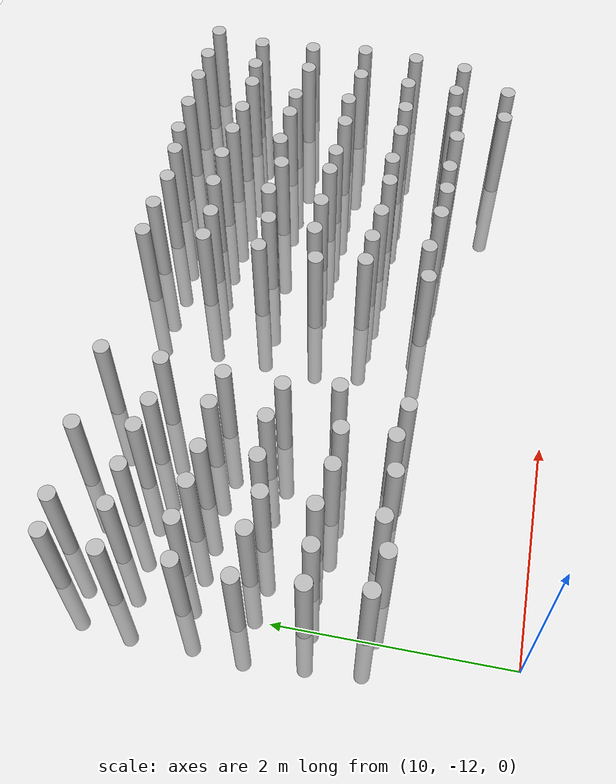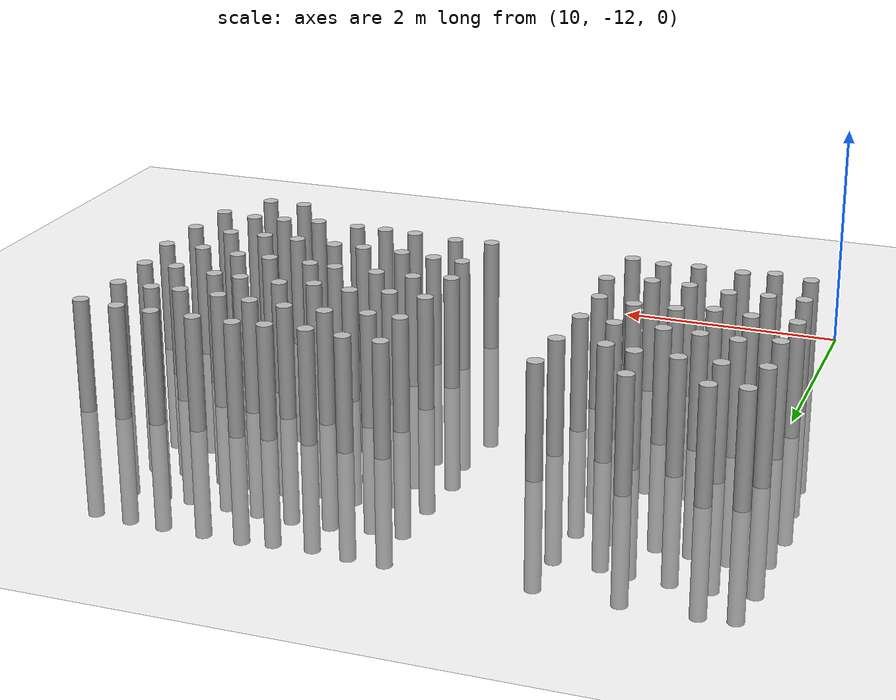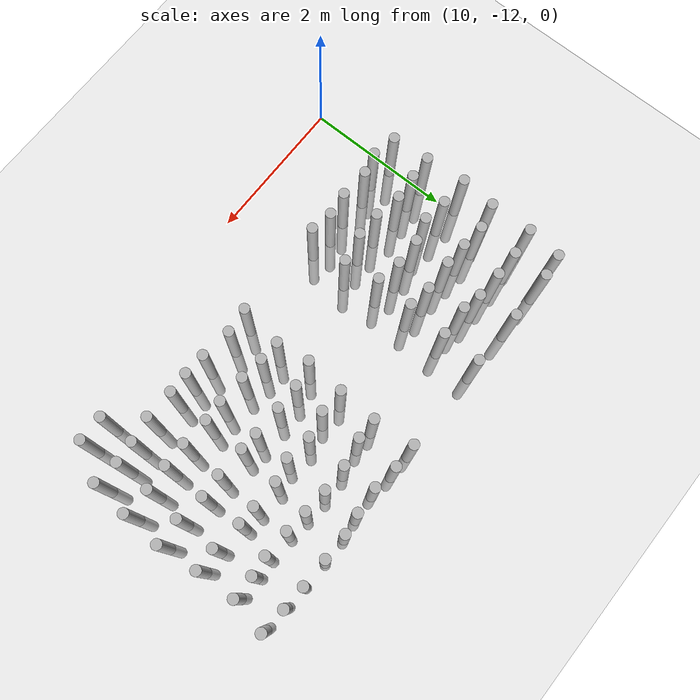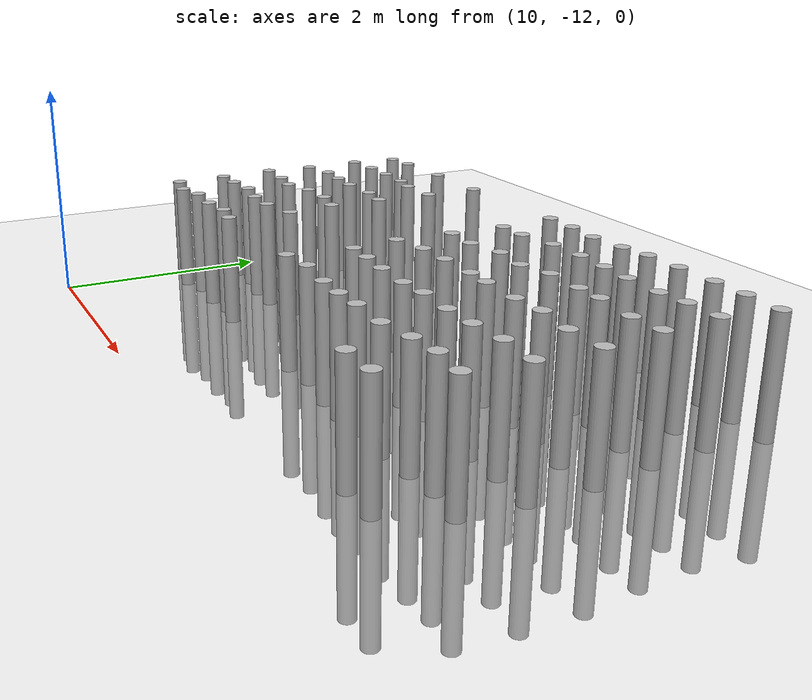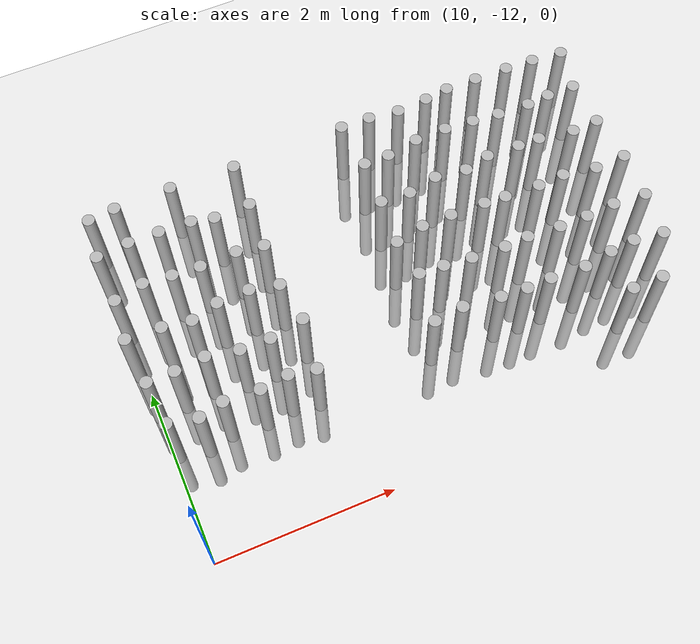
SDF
<sdf version="1.7">
 <world name="farmland_world">
  <model name="ground_plane">
   <static>1</static>
   <link name="link">
    <collision name="collision">
     <geometry><plane><normal>0 0 1</normal><size>40.0 40.0</size></plane></geometry>
     <surface><friction><ode><mu>100</mu><mu2>50</mu2></ode></friction></surface>
    </collision>
    <visual name="visual">
     <cast_shadows>0</cast_shadows>
     <geometry><plane><normal>0 0 1</normal><size>40.0 40.0</size></plane></geometry>
     <material>
      <script><uri>file://media/materials/scripts/gazebo.material</uri><name>Gazebo/Grey</name></script>
     </material>
    </visual>
   </link>
  </model>
  <model name="tree_3_462">
   <static>1</static>
   <link name="link">
    <collision name="collision">
     <geometry><cylinder><radius>0.07</radius><length>2.0</length></cylinder></geometry>
     <surface><friction><ode><mu>100</mu><mu2>50</mu2></ode></friction></surface>
    </collision>
    <visual name="visual">
     <geometry><cylinder><radius>0.07</radius><length>2.0</length></cylinder></geometry>
    </visual>
   </link>
   <pose>10.034355227748037 -8.24918176960398 0 0 0 0</pose>
  </model>
  <model name="tree_3_463">
   <static>1</static>
   <link name="link">
    <collision name="collision">
     <geometry><cylinder><radius>0.07</radius><length>2.0</length></cylinder></geometry>
     <surface><friction><ode><mu>100</mu><mu2>50</mu2></ode></friction></surface>
    </collision>
    <visual name="visual">
     <geometry><cylinder><radius>0.07</radius><length>2.0</length></cylinder></geometry>
    </visual>
   </link>
   <pose>9.980914755187554 -8.711843196977357 0 0 0 0</pose>
  </model>
  <model name="tree_3_464">
   <static>1</static>
   <link name="link">
    <collision name="collision">
     <geometry><cylinder><radius>0.07</radius><length>2.0</length></cylinder></geometry>
     <surface><friction><ode><mu>100</mu><mu2>50</mu2></ode></friction></surface>
    </collision>
    <visual name="visual">
     <geometry><cylinder><radius>0.07</radius><length>2.0</length></cylinder></geometry>
    </visual>
   </link>
   <pose>9.999004017407108 -9.276127585104843 0 0 0 0</pose>
  </model>
  <model name="tree_3_465">
   <static>1</static>
   <link name="link">
    <collision name="collision">
     <geometry><cylinder><radius>0.07</radius><length>2.0</length></cylinder></geometry>
     <surface><friction><ode><mu>100</mu><mu2>50</mu2></ode></friction></surface>
    </collision>
    <visual name="visual">
     <geometry><cylinder><radius>0.07</radius><length>2.0</length></cylinder></geometry>
    </visual>
   </link>
   <pose>9.958906006982131 -9.741038164783939 0 0 0 0</pose>
  </model>
  <model name="tree_3_466">
   <static>1</static>
   <link name="link">
    <collision name="collision">
     <geometry><cylinder><radius>0.07</radius><length>2.0</length></cylinder></geometry>
     <surface><friction><ode><mu>100</mu><mu2>50</mu2></ode></friction></surface>
    </collision>
    <visual name="visual">
     <geometry><cylinder><radius>0.07</radius><length>2.0</length></cylinder></geometry>
    </visual>
   </link>
   <pose>10.008558735923781 -10.279295797023625 0 0 0 0</pose>
  </model>
  <model name="tree_3_467">
   <static>1</static>
   <link name="link">
    <collision name="collision">
     <geometry><cylinder><radius>0.07</radius><length>2.0</length></cylinder></geometry>
     <surface><friction><ode><mu>100</mu><mu2>50</mu2></ode></friction></surface>
    </collision>
    <visual name="visual">
     <geometry><cylinder><radius>0.07</radius><length>2.0</length></cylinder></geometry>
    </visual>
   </link>
   <pose>10.049221879994418 -10.774444356876124 0 0 0 0</pose>
  </model>
  <model name="tree_3_492">
   <static>1</static>
   <link name="link">
    <collision name="collision">
     <geometry><cylinder><radius>0.07</radius><length>2.0</length></cylinder></geometry>
     <surface><friction><ode><mu>100</mu><mu2>50</mu2></ode></friction></surface>
    </collision>
    <visual name="visual">
     <geometry><cylinder><radius>0.07</radius><length>2.0</length></cylinder></geometry>
    </visual>
   </link>
   <pose>10.332365573795773 -8.217462217007322 0 0 0 0</pose>
  </model>
  <model name="tree_3_493">
   <static>1</static>
   <link name="link">
    <collision name="collision">
     <geometry><cylinder><radius>0.07</radius><length>2.0</length></cylinder></geometry>
     <surface><friction><ode><mu>100</mu><mu2>50</mu2></ode></friction></surface>
    </collision>
    <visual name="visual">
     <geometry><cylinder><radius>0.07</radius><length>2.0</length></cylinder></geometry>
    </visual>
   </link>
   <pose>10.339414073277004 -8.677814502808289 0 0 0 0</pose>
  </model>
  <model name="tree_3_494">
   <static>1</static>
   <link name="link">
    <collision name="collision">
     <geometry><cylinder><radius>0.07</radius><length>2.0</length></cylinder></geometry>
     <surface><friction><ode><mu>100</mu><mu2>50</mu2></ode></friction></surface>
    </collision>
    <visual name="visual">
     <geometry><cylinder><radius>0.07</radius><length>2.0</length></cylinder></geometry>
    </visual>
   </link>
   <pose>10.327191539445167 -9.200652118761365 0 0 0 0</pose>
  </model>
  <model name="tree_3_495">
   <static>1</static>
   <link name="link">
    <collision name="collision">
     <geometry><cylinder><radius>0.07</radius><length>2.0</length></cylinder></geometry>
     <surface><friction><ode><mu>100</mu><mu2>50</mu2></ode></friction></surface>
    </collision>
    <visual name="visual">
     <geometry><cylinder><radius>0.07</radius><length>2.0</length></cylinder></geometry>
    </visual>
   </link>
   <pose>10.345762252976375 -9.758223124699576 0 0 0 0</pose>
  </model>
  <model name="tree_3_496">
   <static>1</static>
   <link name="link">
    <collision name="collision">
     <geometry><cylinder><radius>0.07</radius><length>2.0</length></cylinder></geometry>
     <surface><friction><ode><mu>100</mu><mu2>50</mu2></ode></friction></surface>
    </collision>
    <visual name="visual">
     <geometry><cylinder><radius>0.07</radius><length>2.0</length></cylinder></geometry>
    </visual>
   </link>
   <pose>10.311773828897104 -10.27441916211989 0 0 0 0</pose>
  </model>
  <model name="tree_3_497">
   <static>1</static>
   <link name="link">
    <collision name="collision">
     <geometry><cylinder><radius>0.07</radius><length>2.0</length></cylinder></geometry>
     <surface><friction><ode><mu>100</mu><mu2>50</mu2></ode></friction></surface>
    </collision>
    <visual name="visual">
     <geometry><cylinder><radius>0.07</radius><length>2.0</length></cylinder></geometry>
    </visual>
   </link>
   <pose>10.374017797929314 -10.842817393499175 0 0 0 0</pose>
  </model>
  <model name="tree_3_523">
   <static>1</static>
   <link name="link">
    <collision name="collision">
     <geometry><cylinder><radius>0.07</radius><length>2.0</length></cylinder></geometry>
     <surface><friction><ode><mu>100</mu><mu2>50</mu2></ode></friction></surface>
    </collision>
    <visual name="visual">
     <geometry><cylinder><radius>0.07</radius><length>2.0</length></cylinder></geometry>
    </visual>
   </link>
   <pose>10.681841342805669 -8.679052861885017 0 0 0 0</pose>
  </model>
  <model name="tree_3_524">
   <static>1</static>
   <link name="link">
    <collision name="collision">
     <geometry><cylinder><radius>0.07</radius><length>2.0</length></cylinder></geometry>
     <surface><friction><ode><mu>100</mu><mu2>50</mu2></ode></friction></surface>
    </collision>
    <visual name="visual">
     <geometry><cylinder><radius>0.07</radius><length>2.0</length></cylinder></geometry>
    </visual>
   </link>
   <pose>10.643645539555626 -9.229473691809075 0 0 0 0</pose>
  </model>
  <model name="tree_3_525">
   <static>1</static>
   <link name="link">
    <collision name="collision">
     <geometry><cylinder><radius>0.07</radius><length>2.0</length></cylinder></geometry>
     <surface><friction><ode><mu>100</mu><mu2>50</mu2></ode></friction></surface>
    </collision>
    <visual name="visual">
     <geometry><cylinder><radius>0.07</radius><length>2.0</length></cylinder></geometry>
    </visual>
   </link>
   <pose>10.663947074443218 -9.80685404034091 0 0 0 0</pose>
  </model>
  <model name="tree_3_526">
   <static>1</static>
   <link name="link">
    <collision name="collision">
     <geometry><cylinder><radius>0.07</radius><length>2.0</length></cylinder></geometry>
     <surface><friction><ode><mu>100</mu><mu2>50</mu2></ode></friction></surface>
    </collision>
    <visual name="visual">
     <geometry><cylinder><radius>0.07</radius><length>2.0</length></cylinder></geometry>
    </visual>
   </link>
   <pose>10.645173323330264 -10.24244063990808 0 0 0 0</pose>
  </model>
  <model name="tree_3_527">
   <static>1</static>
   <link name="link">
    <collision name="collision">
     <geometry><cylinder><radius>0.07</radius><length>2.0</length></cylinder></geometry>
     <surface><friction><ode><mu>100</mu><mu2>50</mu2></ode></friction></surface>
    </collision>
    <visual name="visual">
     <geometry><cylinder><radius>0.07</radius><length>2.0</length></cylinder></geometry>
    </visual>
   </link>
   <pose>10.647410132929833 -10.77405141595701 0 0 0 0</pose>
  </model>
  <model name="tree_3_552">
   <static>1</static>
   <link name="link">
    <collision name="collision">
     <geometry><cylinder><radius>0.07</radius><length>2.0</length></cylinder></geometry>
     <surface><friction><ode><mu>100</mu><mu2>50</mu2></ode></friction></surface>
    </collision>
    <visual name="visual">
     <geometry><cylinder><radius>0.07</radius><length>2.0</length></cylinder></geometry>
    </visual>
   </link>
   <pose>10.97089051082248 -8.205882709805417 0 0 0 0</pose>
  </model>
  <model name="tree_3_553">
   <static>1</static>
   <link name="link">
    <collision name="collision">
     <geometry><cylinder><radius>0.07</radius><length>2.0</length></cylinder></geometry>
     <surface><friction><ode><mu>100</mu><mu2>50</mu2></ode></friction></surface>
    </collision>
    <visual name="visual">
     <geometry><cylinder><radius>0.07</radius><length>2.0</length></cylinder></geometry>
    </visual>
   </link>
   <pose>11.041349924558634 -8.69369574550247 0 0 0 0</pose>
  </model>
  <model name="tree_3_554">
   <static>1</static>
   <link name="link">
    <collision name="collision">
     <geometry><cylinder><radius>0.07</radius><length>2.0</length></cylinder></geometry>
     <surface><friction><ode><mu>100</mu><mu2>50</mu2></ode></friction></surface>
    </collision>
    <visual name="visual">
     <geometry><cylinder><radius>0.07</radius><length>2.0</length></cylinder></geometry>
    </visual>
   </link>
   <pose>10.952079924428277 -9.247126707628068 0 0 0 0</pose>
  </model>
  <model name="tree_3_555">
   <static>1</static>
   <link name="link">
    <collision name="collision">
     <geometry><cylinder><radius>0.07</radius><length>2.0</length></cylinder></geometry>
     <surface><friction><ode><mu>100</mu><mu2>50</mu2></ode></friction></surface>
    </collision>
    <visual name="visual">
     <geometry><cylinder><radius>0.07</radius><length>2.0</length></cylinder></geometry>
    </visual>
   </link>
   <pose>10.968363971186127 -9.719468244523386 0 0 0 0</pose>
  </model>
  <model name="tree_3_556">
   <static>1</static>
   <link name="link">
    <collision name="collision">
     <geometry><cylinder><radius>0.07</radius><length>2.0</length></cylinder></geometry>
     <surface><friction><ode><mu>100</mu><mu2>50</mu2></ode></friction></surface>
    </collision>
    <visual name="visual">
     <geometry><cylinder><radius>0.07</radius><length>2.0</length></cylinder></geometry>
    </visual>
   </link>
   <pose>11.002034442983186 -10.310672538116515 0 0 0 0</pose>
  </model>
  <model name="tree_3_557">
   <static>1</static>
   <link name="link">
    <collision name="collision">
     <geometry><cylinder><radius>0.07</radius><length>2.0</length></cylinder></geometry>
     <surface><friction><ode><mu>100</mu><mu2>50</mu2></ode></friction></surface>
    </collision>
    <visual name="visual">
     <geometry><cylinder><radius>0.07</radius><length>2.0</length></cylinder></geometry>
    </visual>
   </link>
   <pose>11.040729754713265 -10.798969011950629 0 0 0 0</pose>
  </model>
  <model name="tree_3_583">
   <static>1</static>
   <link name="link">
    <collision name="collision">
     <geometry><cylinder><radius>0.07</radius><length>2.0</length></cylinder></geometry>
     <surface><friction><ode><mu>100</mu><mu2>50</mu2></ode></friction></surface>
    </collision>
    <visual name="visual">
     <geometry><cylinder><radius>0.07</radius><length>2.0</length></cylinder></geometry>
    </visual>
   </link>
   <pose>11.290045029179474 -8.749423629028929 0 0 0 0</pose>
  </model>
  <model name="tree_3_584">
   <static>1</static>
   <link name="link">
    <collision name="collision">
     <geometry><cylinder><radius>0.07</radius><length>2.0</length></cylinder></geometry>
     <surface><friction><ode><mu>100</mu><mu2>50</mu2></ode></friction></surface>
    </collision>
    <visual name="visual">
     <geometry><cylinder><radius>0.07</radius><length>2.0</length></cylinder></geometry>
    </visual>
   </link>
   <pose>11.358968949280722 -9.230997505002115 0 0 0 0</pose>
  </model>
  <model name="tree_3_585">
   <static>1</static>
   <link name="link">
    <collision name="collision">
     <geometry><cylinder><radius>0.07</radius><length>2.0</length></cylinder></geometry>
     <surface><friction><ode><mu>100</mu><mu2>50</mu2></ode></friction></surface>
    </collision>
    <visual name="visual">
     <geometry><cylinder><radius>0.07</radius><length>2.0</length></cylinder></geometry>
    </visual>
   </link>
   <pose>11.325517105624607 -9.70866576479619 0 0 0 0</pose>
  </model>
  <model name="tree_3_586">
   <static>1</static>
   <link name="link">
    <collision name="collision">
     <geometry><cylinder><radius>0.07</radius><length>2.0</length></cylinder></geometry>
     <surface><friction><ode><mu>100</mu><mu2>50</mu2></ode></friction></surface>
    </collision>
    <visual name="visual">
     <geometry><cylinder><radius>0.07</radius><length>2.0</length></cylinder></geometry>
    </visual>
   </link>
   <pose>11.33307773273002 -10.315350873492628 0 0 0 0</pose>
  </model>
  <model name="tree_3_587">
   <static>1</static>
   <link name="link">
    <collision name="collision">
     <geometry><cylinder><radius>0.07</radius><length>2.0</length></cylinder></geometry>
     <surface><friction><ode><mu>100</mu><mu2>50</mu2></ode></friction></surface>
    </collision>
    <visual name="visual">
     <geometry><cylinder><radius>0.07</radius><length>2.0</length></cylinder></geometry>
    </visual>
   </link>
   <pose>11.350974979517726 -10.760640184333463 0 0 0 0</pose>
  </model>
  <model name="tree_3_612">
   <static>1</static>
   <link name="link">
    <collision name="collision">
     <geometry><cylinder><radius>0.07</radius><length>2.0</length></cylinder></geometry>
     <surface><friction><ode><mu>100</mu><mu2>50</mu2></ode></friction></surface>
    </collision>
    <visual name="visual">
     <geometry><cylinder><radius>0.07</radius><length>2.0</length></cylinder></geometry>
    </visual>
   </link>
   <pose>11.702949707279314 -8.221105415766132 0 0 0 0</pose>
  </model>
  <model name="tree_3_613">
   <static>1</static>
   <link name="link">
    <collision name="collision">
     <geometry><cylinder><radius>0.07</radius><length>2.0</length></cylinder></geometry>
     <surface><friction><ode><mu>100</mu><mu2>50</mu2></ode></friction></surface>
    </collision>
    <visual name="visual">
     <geometry><cylinder><radius>0.07</radius><length>2.0</length></cylinder></geometry>
    </visual>
   </link>
   <pose>11.69376539286346 -8.737651073276362 0 0 0 0</pose>
  </model>
  <model name="tree_3_614">
   <static>1</static>
   <link name="link">
    <collision name="collision">
     <geometry><cylinder><radius>0.07</radius><length>2.0</length></cylinder></geometry>
     <surface><friction><ode><mu>100</mu><mu2>50</mu2></ode></friction></surface>
    </collision>
    <visual name="visual">
     <geometry><cylinder><radius>0.07</radius><length>2.0</length></cylinder></geometry>
    </visual>
   </link>
   <pose>11.659645146515228 -9.275445036909211 0 0 0 0</pose>
  </model>
  <model name="tree_3_615">
   <static>1</static>
   <link name="link">
    <collision name="collision">
     <geometry><cylinder><radius>0.07</radius><length>2.0</length></cylinder></geometry>
     <surface><friction><ode><mu>100</mu><mu2>50</mu2></ode></friction></surface>
    </collision>
    <visual name="visual">
     <geometry><cylinder><radius>0.07</radius><length>2.0</length></cylinder></geometry>
    </visual>
   </link>
   <pose>11.644641552794607 -9.777406642478953 0 0 0 0</pose>
  </model>
  <model name="tree_3_616">
   <static>1</static>
   <link name="link">
    <collision name="collision">
     <geometry><cylinder><radius>0.07</radius><length>2.0</length></cylinder></geometry>
     <surface><friction><ode><mu>100</mu><mu2>50</mu2></ode></friction></surface>
    </collision>
    <visual name="visual">
     <geometry><cylinder><radius>0.07</radius><length>2.0</length></cylinder></geometry>
    </visual>
   </link>
   <pose>11.717865262290651 -10.240258479360453 0 0 0 0</pose>
  </model>
  <model name="tree_3_617">
   <static>1</static>
   <link name="link">
    <collision name="collision">
     <geometry><cylinder><radius>0.07</radius><length>2.0</length></cylinder></geometry>
     <surface><friction><ode><mu>100</mu><mu2>50</mu2></ode></friction></surface>
    </collision>
    <visual name="visual">
     <geometry><cylinder><radius>0.07</radius><length>2.0</length></cylinder></geometry>
    </visual>
   </link>
   <pose>11.643942772428986 -10.815607322003656 0 0 0 0</pose>
  </model>
  <model name="tree_3_642">
   <static>1</static>
   <link name="link">
    <collision name="collision">
     <geometry><cylinder><radius>0.07</radius><length>2.0</length></cylinder></geometry>
     <surface><friction><ode><mu>100</mu><mu2>50</mu2></ode></friction></surface>
    </collision>
    <visual name="visual">
     <geometry><cylinder><radius>0.07</radius><length>2.0</length></cylinder></geometry>
    </visual>
   </link>
   <pose>12.9904623324295 -8.209573094518973 0 0 0 0</pose>
  </model>
  <model name="tree_3_643">
   <static>1</static>
   <link name="link">
    <collision name="collision">
     <geometry><cylinder><radius>0.07</radius><length>2.0</length></cylinder></geometry>
     <surface><friction><ode><mu>100</mu><mu2>50</mu2></ode></friction></surface>
    </collision>
    <visual name="visual">
     <geometry><cylinder><radius>0.07</radius><length>2.0</length></cylinder></geometry>
    </visual>
   </link>
   <pose>13.04057066407297 -8.756005302309418 0 0 0 0</pose>
  </model>
  <model name="tree_3_644">
   <static>1</static>
   <link name="link">
    <collision name="collision">
     <geometry><cylinder><radius>0.07</radius><length>2.0</length></cylinder></geometry>
     <surface><friction><ode><mu>100</mu><mu2>50</mu2></ode></friction></surface>
    </collision>
    <visual name="visual">
     <geometry><cylinder><radius>0.07</radius><length>2.0</length></cylinder></geometry>
    </visual>
   </link>
   <pose>13.01732659056247 -9.27075604964552 0 0 0 0</pose>
  </model>
  <model name="tree_3_645">
   <static>1</static>
   <link name="link">
    <collision name="collision">
     <geometry><cylinder><radius>0.07</radius><length>2.0</length></cylinder></geometry>
     <surface><friction><ode><mu>100</mu><mu2>50</mu2></ode></friction></surface>
    </collision>
    <visual name="visual">
     <geometry><cylinder><radius>0.07</radius><length>2.0</length></cylinder></geometry>
    </visual>
   </link>
   <pose>12.975520608169763 -9.793567005552353 0 0 0 0</pose>
  </model>
  <model name="tree_3_646">
   <static>1</static>
   <link name="link">
    <collision name="collision">
     <geometry><cylinder><radius>0.07</radius><length>2.0</length></cylinder></geometry>
     <surface><friction><ode><mu>100</mu><mu2>50</mu2></ode></friction></surface>
    </collision>
    <visual name="visual">
     <geometry><cylinder><radius>0.07</radius><length>2.0</length></cylinder></geometry>
    </visual>
   </link>
   <pose>13.038709994615017 -10.231360615431187 0 0 0 0</pose>
  </model>
  <model name="tree_3_647">
   <static>1</static>
   <link name="link">
    <collision name="collision">
     <geometry><cylinder><radius>0.07</radius><length>2.0</length></cylinder></geometry>
     <surface><friction><ode><mu>100</mu><mu2>50</mu2></ode></friction></surface>
    </collision>
    <visual name="visual">
     <geometry><cylinder><radius>0.07</radius><length>2.0</length></cylinder></geometry>
    </visual>
   </link>
   <pose>12.96204335606268 -10.800317358770204 0 0 0 0</pose>
  </model>
  <model name="tree_3_672">
   <static>1</static>
   <link name="link">
    <collision name="collision">
     <geometry><cylinder><radius>0.07</radius><length>2.0</length></cylinder></geometry>
     <surface><friction><ode><mu>100</mu><mu2>50</mu2></ode></friction></surface>
    </collision>
    <visual name="visual">
     <geometry><cylinder><radius>0.07</radius><length>2.0</length></cylinder></geometry>
    </visual>
   </link>
   <pose>13.321592068045645 -8.215767385626709 0 0 0 0</pose>
  </model>
  <model name="tree_3_673">
   <static>1</static>
   <link name="link">
    <collision name="collision">
     <geometry><cylinder><radius>0.07</radius><length>2.0</length></cylinder></geometry>
     <surface><friction><ode><mu>100</mu><mu2>50</mu2></ode></friction></surface>
    </collision>
    <visual name="visual">
     <geometry><cylinder><radius>0.07</radius><length>2.0</length></cylinder></geometry>
    </visual>
   </link>
   <pose>13.324267784529892 -8.75476872961021 0 0 0 0</pose>
  </model>
  <model name="tree_3_674">
   <static>1</static>
   <link name="link">
    <collision name="collision">
     <geometry><cylinder><radius>0.07</radius><length>2.0</length></cylinder></geometry>
     <surface><friction><ode><mu>100</mu><mu2>50</mu2></ode></friction></surface>
    </collision>
    <visual name="visual">
     <geometry><cylinder><radius>0.07</radius><length>2.0</length></cylinder></geometry>
    </visual>
   </link>
   <pose>13.347888110116514 -9.288575292326017 0 0 0 0</pose>
  </model>
  <model name="tree_3_675">
   <static>1</static>
   <link name="link">
    <collision name="collision">
     <geometry><cylinder><radius>0.07</radius><length>2.0</length></cylinder></geometry>
     <surface><friction><ode><mu>100</mu><mu2>50</mu2></ode></friction></surface>
    </collision>
    <visual name="visual">
     <geometry><cylinder><radius>0.07</radius><length>2.0</length></cylinder></geometry>
    </visual>
   </link>
   <pose>13.304924322209027 -9.7225327858566 0 0 0 0</pose>
  </model>
  <model name="tree_3_676">
   <static>1</static>
   <link name="link">
    <collision name="collision">
     <geometry><cylinder><radius>0.07</radius><length>2.0</length></cylinder></geometry>
     <surface><friction><ode><mu>100</mu><mu2>50</mu2></ode></friction></surface>
    </collision>
    <visual name="visual">
     <geometry><cylinder><radius>0.07</radius><length>2.0</length></cylinder></geometry>
    </visual>
   </link>
   <pose>13.313763984476628 -10.247605630796855 0 0 0 0</pose>
  </model>
  <model name="tree_3_677">
   <static>1</static>
   <link name="link">
    <collision name="collision">
     <geometry><cylinder><radius>0.07</radius><length>2.0</length></cylinder></geometry>
     <surface><friction><ode><mu>100</mu><mu2>50</mu2></ode></friction></surface>
    </collision>
    <visual name="visual">
     <geometry><cylinder><radius>0.07</radius><length>2.0</length></cylinder></geometry>
    </visual>
   </link>
   <pose>13.29695463042059 -10.765091320781709 0 0 0 0</pose>
  </model>
  <model name="tree_3_702">
   <static>1</static>
   <link name="link">
    <collision name="collision">
     <geometry><cylinder><radius>0.07</radius><length>2.0</length></cylinder></geometry>
     <surface><friction><ode><mu>100</mu><mu2>50</mu2></ode></friction></surface>
    </collision>
    <visual name="visual">
     <geometry><cylinder><radius>0.07</radius><length>2.0</length></cylinder></geometry>
    </visual>
   </link>
   <pose>13.661231190270659 -8.256197031723621 0 0 0 0</pose>
  </model>
  <model name="tree_3_703">
   <static>1</static>
   <link name="link">
    <collision name="collision">
     <geometry><cylinder><radius>0.07</radius><length>2.0</length></cylinder></geometry>
     <surface><friction><ode><mu>100</mu><mu2>50</mu2></ode></friction></surface>
    </collision>
    <visual name="visual">
     <geometry><cylinder><radius>0.07</radius><length>2.0</length></cylinder></geometry>
    </visual>
   </link>
   <pose>13.685464908192015 -8.690448746650912 0 0 0 0</pose>
  </model>
  <model name="tree_3_704">
   <static>1</static>
   <link name="link">
    <collision name="collision">
     <geometry><cylinder><radius>0.07</radius><length>2.0</length></cylinder></geometry>
     <surface><friction><ode><mu>100</mu><mu2>50</mu2></ode></friction></surface>
    </collision>
    <visual name="visual">
     <geometry><cylinder><radius>0.07</radius><length>2.0</length></cylinder></geometry>
    </visual>
   </link>
   <pose>13.683949645974137 -9.216388109225543 0 0 0 0</pose>
  </model>
  <model name="tree_3_705">
   <static>1</static>
   <link name="link">
    <collision name="collision">
     <geometry><cylinder><radius>0.07</radius><length>2.0</length></cylinder></geometry>
     <surface><friction><ode><mu>100</mu><mu2>50</mu2></ode></friction></surface>
    </collision>
    <visual name="visual">
     <geometry><cylinder><radius>0.07</radius><length>2.0</length></cylinder></geometry>
    </visual>
   </link>
   <pose>13.643312410853571 -9.717119394999067 0 0 0 0</pose>
  </model>
  <model name="tree_3_706">
   <static>1</static>
   <link name="link">
    <collision name="collision">
     <geometry><cylinder><radius>0.07</radius><length>2.0</length></cylinder></geometry>
     <surface><friction><ode><mu>100</mu><mu2>50</mu2></ode></friction></surface>
    </collision>
    <visual name="visual">
     <geometry><cylinder><radius>0.07</radius><length>2.0</length></cylinder></geometry>
    </visual>
   </link>
   <pose>13.627222657958933 -10.27918110179269 0 0 0 0</pose>
  </model>
  <model name="tree_3_707">
   <static>1</static>
   <link name="link">
    <collision name="collision">
     <geometry><cylinder><radius>0.07</radius><length>2.0</length></cylinder></geometry>
     <surface><friction><ode><mu>100</mu><mu2>50</mu2></ode></friction></surface>
    </collision>
    <visual name="visual">
     <geometry><cylinder><radius>0.07</radius><length>2.0</length></cylinder></geometry>
    </visual>
   </link>
   <pose>13.71165046486986 -10.8160437298866 0 0 0 0</pose>
  </model>
  <model name="tree_3_732">
   <static>1</static>
   <link name="link">
    <collision name="collision">
     <geometry><cylinder><radius>0.07</radius><length>2.0</length></cylinder></geometry>
     <surface><friction><ode><mu>100</mu><mu2>50</mu2></ode></friction></surface>
    </collision>
    <visual name="visual">
     <geometry><cylinder><radius>0.07</radius><length>2.0</length></cylinder></geometry>
    </visual>
   </link>
   <pose>14.013452239657871 -8.232296355846897 0 0 0 0</pose>
  </model>
  <model name="tree_3_733">
   <static>1</static>
   <link name="link">
    <collision name="collision">
     <geometry><cylinder><radius>0.07</radius><length>2.0</length></cylinder></geometry>
     <surface><friction><ode><mu>100</mu><mu2>50</mu2></ode></friction></surface>
    </collision>
    <visual name="visual">
     <geometry><cylinder><radius>0.07</radius><length>2.0</length></cylinder></geometry>
    </visual>
   </link>
   <pose>14.045913522676882 -8.684928720273328 0 0 0 0</pose>
  </model>
  <model name="tree_3_734">
   <static>1</static>
   <link name="link">
    <collision name="collision">
     <geometry><cylinder><radius>0.07</radius><length>2.0</length></cylinder></geometry>
     <surface><friction><ode><mu>100</mu><mu2>50</mu2></ode></friction></surface>
    </collision>
    <visual name="visual">
     <geometry><cylinder><radius>0.07</radius><length>2.0</length></cylinder></geometry>
    </visual>
   </link>
   <pose>14.034196990984958 -9.263644720212852 0 0 0 0</pose>
  </model>
  <model name="tree_3_735">
   <static>1</static>
   <link name="link">
    <collision name="collision">
     <geometry><cylinder><radius>0.07</radius><length>2.0</length></cylinder></geometry>
     <surface><friction><ode><mu>100</mu><mu2>50</mu2></ode></friction></surface>
    </collision>
    <visual name="visual">
     <geometry><cylinder><radius>0.07</radius><length>2.0</length></cylinder></geometry>
    </visual>
   </link>
   <pose>14.037819652760547 -9.72550541514475 0 0 0 0</pose>
  </model>
  <model name="tree_3_736">
   <static>1</static>
   <link name="link">
    <collision name="collision">
     <geometry><cylinder><radius>0.07</radius><length>2.0</length></cylinder></geometry>
     <surface><friction><ode><mu>100</mu><mu2>50</mu2></ode></friction></surface>
    </collision>
    <visual name="visual">
     <geometry><cylinder><radius>0.07</radius><length>2.0</length></cylinder></geometry>
    </visual>
   </link>
   <pose>14.007352031995246 -10.297913568546171 0 0 0 0</pose>
  </model>
  <model name="tree_3_737">
   <static>1</static>
   <link name="link">
    <collision name="collision">
     <geometry><cylinder><radius>0.07</radius><length>2.0</length></cylinder></geometry>
     <surface><friction><ode><mu>100</mu><mu2>50</mu2></ode></friction></surface>
    </collision>
    <visual name="visual">
     <geometry><cylinder><radius>0.07</radius><length>2.0</length></cylinder></geometry>
    </visual>
   </link>
   <pose>14.0074934228252 -10.83184885056388 0 0 0 0</pose>
  </model>
  <model name="tree_3_762">
   <static>1</static>
   <link name="link">
    <collision name="collision">
     <geometry><cylinder><radius>0.07</radius><length>2.0</length></cylinder></geometry>
     <surface><friction><ode><mu>100</mu><mu2>50</mu2></ode></friction></surface>
    </collision>
    <visual name="visual">
     <geometry><cylinder><radius>0.07</radius><length>2.0</length></cylinder></geometry>
    </visual>
   </link>
   <pose>14.287584242155328 -8.195631277676357 0 0 0 0</pose>
  </model>
  <model name="tree_3_763">
   <static>1</static>
   <link name="link">
    <collision name="collision">
     <geometry><cylinder><radius>0.07</radius><length>2.0</length></cylinder></geometry>
     <surface><friction><ode><mu>100</mu><mu2>50</mu2></ode></friction></surface>
    </collision>
    <visual name="visual">
     <geometry><cylinder><radius>0.07</radius><length>2.0</length></cylinder></geometry>
    </visual>
   </link>
   <pose>14.374826270571619 -8.709224633259891 0 0 0 0</pose>
  </model>
  <model name="tree_3_764">
   <static>1</static>
   <link name="link">
    <collision name="collision">
     <geometry><cylinder><radius>0.07</radius><length>2.0</length></cylinder></geometry>
     <surface><friction><ode><mu>100</mu><mu2>50</mu2></ode></friction></surface>
    </collision>
    <visual name="visual">
     <geometry><cylinder><radius>0.07</radius><length>2.0</length></cylinder></geometry>
    </visual>
   </link>
   <pose>14.327893394053728 -9.191812683437444 0 0 0 0</pose>
  </model>
  <model name="tree_3_765">
   <static>1</static>
   <link name="link">
    <collision name="collision">
     <geometry><cylinder><radius>0.07</radius><length>2.0</length></cylinder></geometry>
     <surface><friction><ode><mu>100</mu><mu2>50</mu2></ode></friction></surface>
    </collision>
    <visual name="visual">
     <geometry><cylinder><radius>0.07</radius><length>2.0</length></cylinder></geometry>
    </visual>
   </link>
   <pose>14.28113385481321 -9.74004596868206 0 0 0 0</pose>
  </model>
  <model name="tree_3_766">
   <static>1</static>
   <link name="link">
    <collision name="collision">
     <geometry><cylinder><radius>0.07</radius><length>2.0</length></cylinder></geometry>
     <surface><friction><ode><mu>100</mu><mu2>50</mu2></ode></friction></surface>
    </collision>
    <visual name="visual">
     <geometry><cylinder><radius>0.07</radius><length>2.0</length></cylinder></geometry>
    </visual>
   </link>
   <pose>14.284073518128581 -10.28115246699807 0 0 0 0</pose>
  </model>
  <model name="tree_3_767">
   <static>1</static>
   <link name="link">
    <collision name="collision">
     <geometry><cylinder><radius>0.07</radius><length>2.0</length></cylinder></geometry>
     <surface><friction><ode><mu>100</mu><mu2>50</mu2></ode></friction></surface>
    </collision>
    <visual name="visual">
     <geometry><cylinder><radius>0.07</radius><length>2.0</length></cylinder></geometry>
    </visual>
   </link>
   <pose>14.28634650748223 -10.824327198599283 0 0 0 0</pose>
  </model>
  <model name="tree_3_792">
   <static>1</static>
   <link name="link">
    <collision name="collision">
     <geometry><cylinder><radius>0.07</radius><length>2.0</length></cylinder></geometry>
     <surface><friction><ode><mu>100</mu><mu2>50</mu2></ode></friction></surface>
    </collision>
    <visual name="visual">
     <geometry><cylinder><radius>0.07</radius><length>2.0</length></cylinder></geometry>
    </visual>
   </link>
   <pose>14.647328445629451 -8.19901577806704 0 0 0 0</pose>
  </model>
  <model name="tree_3_793">
   <static>1</static>
   <link name="link">
    <collision name="collision">
     <geometry><cylinder><radius>0.07</radius><length>2.0</length></cylinder></geometry>
     <surface><friction><ode><mu>100</mu><mu2>50</mu2></ode></friction></surface>
    </collision>
    <visual name="visual">
     <geometry><cylinder><radius>0.07</radius><length>2.0</length></cylinder></geometry>
    </visual>
   </link>
   <pose>14.680016031853423 -8.737472564234743 0 0 0 0</pose>
  </model>
  <model name="tree_3_794">
   <static>1</static>
   <link name="link">
    <collision name="collision">
     <geometry><cylinder><radius>0.07</radius><length>2.0</length></cylinder></geometry>
     <surface><friction><ode><mu>100</mu><mu2>50</mu2></ode></friction></surface>
    </collision>
    <visual name="visual">
     <geometry><cylinder><radius>0.07</radius><length>2.0</length></cylinder></geometry>
    </visual>
   </link>
   <pose>14.70146898034059 -9.206689157582915 0 0 0 0</pose>
  </model>
  <model name="tree_3_795">
   <static>1</static>
   <link name="link">
    <collision name="collision">
     <geometry><cylinder><radius>0.07</radius><length>2.0</length></cylinder></geometry>
     <surface><friction><ode><mu>100</mu><mu2>50</mu2></ode></friction></surface>
    </collision>
    <visual name="visual">
     <geometry><cylinder><radius>0.07</radius><length>2.0</length></cylinder></geometry>
    </visual>
   </link>
   <pose>14.679377434592356 -9.75649693137179 0 0 0 0</pose>
  </model>
  <model name="tree_3_796">
   <static>1</static>
   <link name="link">
    <collision name="collision">
     <geometry><cylinder><radius>0.07</radius><length>2.0</length></cylinder></geometry>
     <surface><friction><ode><mu>100</mu><mu2>50</mu2></ode></friction></surface>
    </collision>
    <visual name="visual">
     <geometry><cylinder><radius>0.07</radius><length>2.0</length></cylinder></geometry>
    </visual>
   </link>
   <pose>14.657421893480699 -10.306847739214367 0 0 0 0</pose>
  </model>
  <model name="tree_3_797">
   <static>1</static>
   <link name="link">
    <collision name="collision">
     <geometry><cylinder><radius>0.07</radius><length>2.0</length></cylinder></geometry>
     <surface><friction><ode><mu>100</mu><mu2>50</mu2></ode></friction></surface>
    </collision>
    <visual name="visual">
     <geometry><cylinder><radius>0.07</radius><length>2.0</length></cylinder></geometry>
    </visual>
   </link>
   <pose>14.684638663920623 -10.843099432207584 0 0 0 0</pose>
  </model>
  <model name="tree_3_822">
   <static>1</static>
   <link name="link">
    <collision name="collision">
     <geometry><cylinder><radius>0.07</radius><length>2.0</length></cylinder></geometry>
     <surface><friction><ode><mu>100</mu><mu2>50</mu2></ode></friction></surface>
    </collision>
    <visual name="visual">
     <geometry><cylinder><radius>0.07</radius><length>2.0</length></cylinder></geometry>
    </visual>
   </link>
   <pose>15.032745926055126 -8.20420875808978 0 0 0 0</pose>
  </model>
  <model name="tree_3_823">
   <static>1</static>
   <link name="link">
    <collision name="collision">
     <geometry><cylinder><radius>0.07</radius><length>2.0</length></cylinder></geometry>
     <surface><friction><ode><mu>100</mu><mu2>50</mu2></ode></friction></surface>
    </collision>
    <visual name="visual">
     <geometry><cylinder><radius>0.07</radius><length>2.0</length></cylinder></geometry>
    </visual>
   </link>
   <pose>15.044526293780073 -8.7529373261537 0 0 0 0</pose>
  </model>
  <model name="tree_3_824">
   <static>1</static>
   <link name="link">
    <collision name="collision">
     <geometry><cylinder><radius>0.07</radius><length>2.0</length></cylinder></geometry>
     <surface><friction><ode><mu>100</mu><mu2>50</mu2></ode></friction></surface>
    </collision>
    <visual name="visual">
     <geometry><cylinder><radius>0.07</radius><length>2.0</length></cylinder></geometry>
    </visual>
   </link>
   <pose>14.9512237247911 -9.21185333137133 0 0 0 0</pose>
  </model>
  <model name="tree_3_825">
   <static>1</static>
   <link name="link">
    <collision name="collision">
     <geometry><cylinder><radius>0.07</radius><length>2.0</length></cylinder></geometry>
     <surface><friction><ode><mu>100</mu><mu2>50</mu2></ode></friction></surface>
    </collision>
    <visual name="visual">
     <geometry><cylinder><radius>0.07</radius><length>2.0</length></cylinder></geometry>
    </visual>
   </link>
   <pose>14.984304638523515 -9.739751955397674 0 0 0 0</pose>
  </model>
  <model name="tree_3_826">
   <static>1</static>
   <link name="link">
    <collision name="collision">
     <geometry><cylinder><radius>0.07</radius><length>2.0</length></cylinder></geometry>
     <surface><friction><ode><mu>100</mu><mu2>50</mu2></ode></friction></surface>
    </collision>
    <visual name="visual">
     <geometry><cylinder><radius>0.07</radius><length>2.0</length></cylinder></geometry>
    </visual>
   </link>
   <pose>14.983437387259182 -10.305589812542644 0 0 0 0</pose>
  </model>
  <model name="tree_3_827">
   <static>1</static>
   <link name="link">
    <collision name="collision">
     <geometry><cylinder><radius>0.07</radius><length>2.0</length></cylinder></geometry>
     <surface><friction><ode><mu>100</mu><mu2>50</mu2></ode></friction></surface>
    </collision>
    <visual name="visual">
     <geometry><cylinder><radius>0.07</radius><length>2.0</length></cylinder></geometry>
    </visual>
   </link>
   <pose>15.015320850008063 -10.790663566850228 0 0 0 0</pose>
  </model>
  <model name="tree_3_828">
   <static>1</static>
   <link name="link">
    <collision name="collision">
     <geometry><cylinder><radius>0.07</radius><length>2.0</length></cylinder></geometry>
     <surface><friction><ode><mu>100</mu><mu2>50</mu2></ode></friction></surface>
    </collision>
    <visual name="visual">
     <geometry><cylinder><radius>0.07</radius><length>2.0</length></cylinder></geometry>
    </visual>
   </link>
   <pose>15.026127138273369 -11.268808971971996 0 0 0 0</pose>
  </model>
  <model name="tree_3_852">
   <static>1</static>
   <link name="link">
    <collision name="collision">
     <geometry><cylinder><radius>0.07</radius><length>2.0</length></cylinder></geometry>
     <surface><friction><ode><mu>100</mu><mu2>50</mu2></ode></friction></surface>
    </collision>
    <visual name="visual">
     <geometry><cylinder><radius>0.07</radius><length>2.0</length></cylinder></geometry>
    </visual>
   </link>
   <pose>15.360517114255586 -8.219278868757867 0 0 0 0</pose>
  </model>
  <model name="tree_3_853">
   <static>1</static>
   <link name="link">
    <collision name="collision">
     <geometry><cylinder><radius>0.07</radius><length>2.0</length></cylinder></geometry>
     <surface><friction><ode><mu>100</mu><mu2>50</mu2></ode></friction></surface>
    </collision>
    <visual name="visual">
     <geometry><cylinder><radius>0.07</radius><length>2.0</length></cylinder></geometry>
    </visual>
   </link>
   <pose>15.305630389745719 -8.727164503218498 0 0 0 0</pose>
  </model>
  <model name="tree_3_854">
   <static>1</static>
   <link name="link">
    <collision name="collision">
     <geometry><cylinder><radius>0.07</radius><length>2.0</length></cylinder></geometry>
     <surface><friction><ode><mu>100</mu><mu2>50</mu2></ode></friction></surface>
    </collision>
    <visual name="visual">
     <geometry><cylinder><radius>0.07</radius><length>2.0</length></cylinder></geometry>
    </visual>
   </link>
   <pose>15.351277521529203 -9.267638272527973 0 0 0 0</pose>
  </model>
  <model name="tree_3_855">
   <static>1</static>
   <link name="link">
    <collision name="collision">
     <geometry><cylinder><radius>0.07</radius><length>2.0</length></cylinder></geometry>
     <surface><friction><ode><mu>100</mu><mu2>50</mu2></ode></friction></surface>
    </collision>
    <visual name="visual">
     <geometry><cylinder><radius>0.07</radius><length>2.0</length></cylinder></geometry>
    </visual>
   </link>
   <pose>15.35816329222843 -9.801033898117474 0 0 0 0</pose>
  </model>
  <model name="tree_3_856">
   <static>1</static>
   <link name="link">
    <collision name="collision">
     <geometry><cylinder><radius>0.07</radius><length>2.0</length></cylinder></geometry>
     <surface><friction><ode><mu>100</mu><mu2>50</mu2></ode></friction></surface>
    </collision>
    <visual name="visual">
     <geometry><cylinder><radius>0.07</radius><length>2.0</length></cylinder></geometry>
    </visual>
   </link>
   <pose>15.317696718537855 -10.283887881044373 0 0 0 0</pose>
  </model>
  <model name="tree_3_857">
   <static>1</static>
   <link name="link">
    <collision name="collision">
     <geometry><cylinder><radius>0.07</radius><length>2.0</length></cylinder></geometry>
     <surface><friction><ode><mu>100</mu><mu2>50</mu2></ode></friction></surface>
    </collision>
    <visual name="visual">
     <geometry><cylinder><radius>0.07</radius><length>2.0</length></cylinder></geometry>
    </visual>
   </link>
   <pose>15.304126573781973 -10.764020292495042 0 0 0 0</pose>
  </model>
  <model name="tree_3_858">
   <static>1</static>
   <link name="link">
    <collision name="collision">
     <geometry><cylinder><radius>0.07</radius><length>2.0</length></cylinder></geometry>
     <surface><friction><ode><mu>100</mu><mu2>50</mu2></ode></friction></surface>
    </collision>
    <visual name="visual">
     <geometry><cylinder><radius>0.07</radius><length>2.0</length></cylinder></geometry>
    </visual>
   </link>
   <pose>15.37390409350327 -11.267423305606096 0 0 0 0</pose>
  </model>
  <model name="tree_3_882">
   <static>1</static>
   <link name="link">
    <collision name="collision">
     <geometry><cylinder><radius>0.07</radius><length>2.0</length></cylinder></geometry>
     <surface><friction><ode><mu>100</mu><mu2>50</mu2></ode></friction></surface>
    </collision>
    <visual name="visual">
     <geometry><cylinder><radius>0.07</radius><length>2.0</length></cylinder></geometry>
    </visual>
   </link>
   <pose>15.712918435913986 -8.249902349010949 0 0 0 0</pose>
  </model>
  <model name="tree_3_883">
   <static>1</static>
   <link name="link">
    <collision name="collision">
     <geometry><cylinder><radius>0.07</radius><length>2.0</length></cylinder></geometry>
     <surface><friction><ode><mu>100</mu><mu2>50</mu2></ode></friction></surface>
    </collision>
    <visual name="visual">
     <geometry><cylinder><radius>0.07</radius><length>2.0</length></cylinder></geometry>
    </visual>
   </link>
   <pose>15.623944365870196 -8.72715311809581 0 0 0 0</pose>
  </model>
  <model name="tree_3_884">
   <static>1</static>
   <link name="link">
    <collision name="collision">
     <geometry><cylinder><radius>0.07</radius><length>2.0</length></cylinder></geometry>
     <surface><friction><ode><mu>100</mu><mu2>50</mu2></ode></friction></surface>
    </collision>
    <visual name="visual">
     <geometry><cylinder><radius>0.07</radius><length>2.0</length></cylinder></geometry>
    </visual>
   </link>
   <pose>15.651809900684304 -9.252860024210374 0 0 0 0</pose>
  </model>
  <model name="tree_3_885">
   <static>1</static>
   <link name="link">
    <collision name="collision">
     <geometry><cylinder><radius>0.07</radius><length>2.0</length></cylinder></geometry>
     <surface><friction><ode><mu>100</mu><mu2>50</mu2></ode></friction></surface>
    </collision>
    <visual name="visual">
     <geometry><cylinder><radius>0.07</radius><length>2.0</length></cylinder></geometry>
    </visual>
   </link>
   <pose>15.71251872786709 -9.785116111979484 0 0 0 0</pose>
  </model>
  <model name="tree_3_886">
   <static>1</static>
   <link name="link">
    <collision name="collision">
     <geometry><cylinder><radius>0.07</radius><length>2.0</length></cylinder></geometry>
     <surface><friction><ode><mu>100</mu><mu2>50</mu2></ode></friction></surface>
    </collision>
    <visual name="visual">
     <geometry><cylinder><radius>0.07</radius><length>2.0</length></cylinder></geometry>
    </visual>
   </link>
   <pose>15.69000566471556 -10.309180594493789 0 0 0 0</pose>
  </model>
  <model name="tree_3_887">
   <static>1</static>
   <link name="link">
    <collision name="collision">
     <geometry><cylinder><radius>0.07</radius><length>2.0</length></cylinder></geometry>
     <surface><friction><ode><mu>100</mu><mu2>50</mu2></ode></friction></surface>
    </collision>
    <visual name="visual">
     <geometry><cylinder><radius>0.07</radius><length>2.0</length></cylinder></geometry>
    </visual>
   </link>
   <pose>15.640289860281706 -10.807372392212011 0 0 0 0</pose>
  </model>
 </world>
</sdf>
